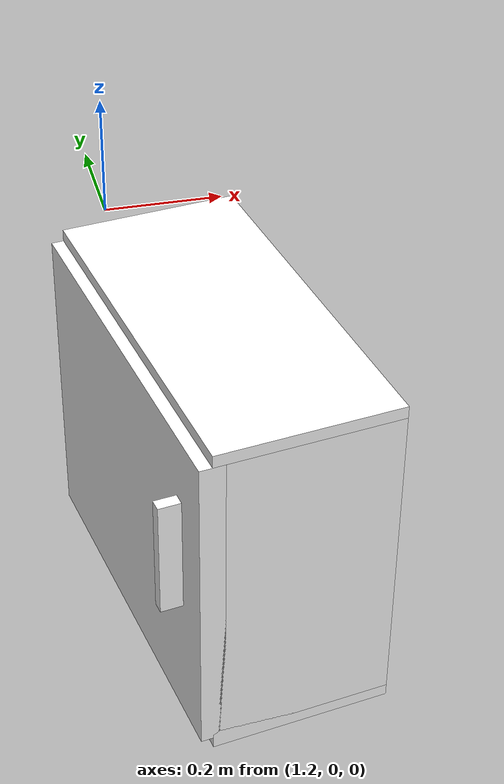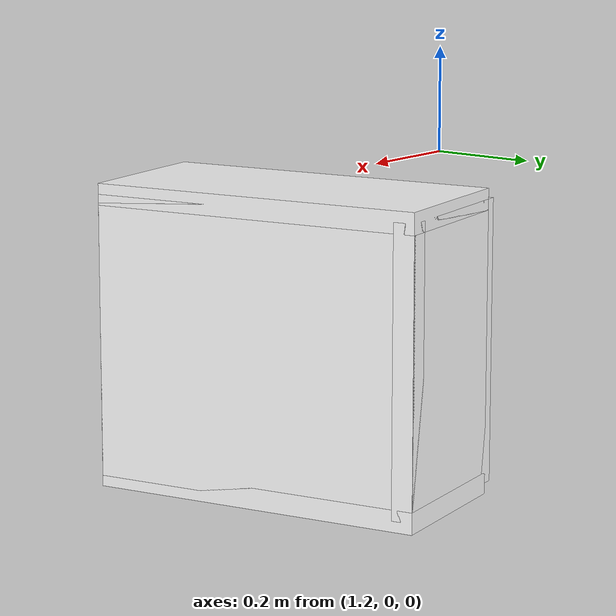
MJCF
<mujoco model="cabinet">
    <compiler angle="radian" eulerseq='zxy' />
    <option gravity = "0 0 0" />
    <option>
        <flag contact = "disable"/>
    </option>
    <statistic	extent="1.0" center="0.0 0.0 0.0"/>
    <visual>
        <map fogstart="3" fogend="5" force="0.1" znear=" 0.100000 " zfar=" 12.000000 "/>
    </visual>
    <size njmax="500" nconmax="100" />
    <actuator>
        <velocity joint="bottom_left_hinge" name="viva_revolution" kv='10'></velocity>
    </actuator>
    <asset>
        <texture builtin="flat" name="tabletex" height="32" width="32" rgb1="1 1 1" type="cube"></texture>
        <texture builtin="flat" name="objtex" height="32" width="32" rgb1="1 1 1" type="cube"></texture>
        <texture builtin="flat" name="handletex" height="32" width="32" rgb1="1 1 1" type="cube"></texture>
        <texture builtin="flat" name="wallpaper" height="32" width="32" rgb1="1 1 1" type="cube"></texture>
        <material name="geomTable" shininess="0.03" specular="0.75" texture="tabletex"></material>
        <material name="geomObj" shininess="0.03" specular="0.75" texture="objtex"></material>
        <material name="geomHandle" shininess="0.03" specular="0.75" texture="handletex"></material>
        <material name="bg" shininess="0.03" specular="0.75" texture="wallpaper"></material>
    </asset>
    <worldbody>
            <body name="cabinet_bottom" pos= " 1.346337 -0.241143 -0.656223 "  quat= " -0.080410 0.000000 0.000000 0.996762" >
                <inertial pos="0 0 0" mass="1" diaginertia="1 1 1" />
                <geom size= " 0.157958 0.342186 0.021444 "  type="box" material="geomObj" name="b"/>
                <body name="cabinet_left" pos= " 0.000000 -0.320742 0.281772 " >
                    <inertial pos="0 0 0" mass="1" diaginertia="1 1 1" />
                    <geom size= " 0.157958 0.021444 0.281772 "  type="box" material="geomObj" name="c" />
                </body>
                <body name="cabinet_right" pos= " 0.000000 0.320742 0.281772 " >
                    <inertial pos="0 0 0" mass="1" diaginertia="1 1 1" />
                    <geom size= " 0.157958 0.021444 0.281772 "  type="box" material="geomObj" name="d" />
                </body>
                <body name="cabinet_top" pos= " 0.000000 0.000000 0.563544 " >
                    <inertial pos="0 0 0" mass="1" diaginertia="1 1 1" />
                    <geom size= " 0.157958 0.342186 0.021444 "  type="box" material="geomObj" name="e"/>
                </body>
                <body name="cabinet_back" pos= " -0.136514 0.000000 0.281772 "  >
                    <inertial pos="0 0 0" mass="1" diaginertia="1 1 1" />
                    <geom size= " 0.021444 0.342186 0.281772 "  type="box" material="geomObj" name="f" />
                </body>
                <body name="cabinet_left_hinge" pos= " 0.157958 -0.342186 0.281772 " >
                    <inertial pos= " 0.000000 0.342186 0.000000 "  mass="1" diaginertia="1 1 1" />
                    <joint name="bottom_left_hinge" type="hinge" pos="0 0 0" axis="0 0 1" limited="true" range= "-2.3 0"  />
                    <geom size= " 0.021444 0.342186 0.281772 "  pos= " 0.000000 0.342186 0.000000 "  type="box" material="geomObj" name="g"/>
                    <body name="handle_link" pos= " 0.039490 0.602207 0.063512 " >
                        <inertial pos="0 0 0" mass="1" diaginertia="1 1 1" />
                        <geom size= " 0.020787 0.010555 0.104946 "  type="box" material="geomHandle" name="h"/>
                    </body>
                </body>
            </body>
        <body name="external_camera_body_0" pos="0.0 0 0.00">
            <camera euler="-1.57 1.57 0.0" fovy=" 54.280851 " name="external_camera_0" pos="0.0 0 0"></camera>
            <inertial pos= " 0.00 0.0 0.000000 " mass="1" diaginertia="1 1 1" />
            <joint name="cam_j" pos="0.0 0 0" axis = "1 0 0" type="free" />
        </body>
    </worldbody>
</mujoco>
